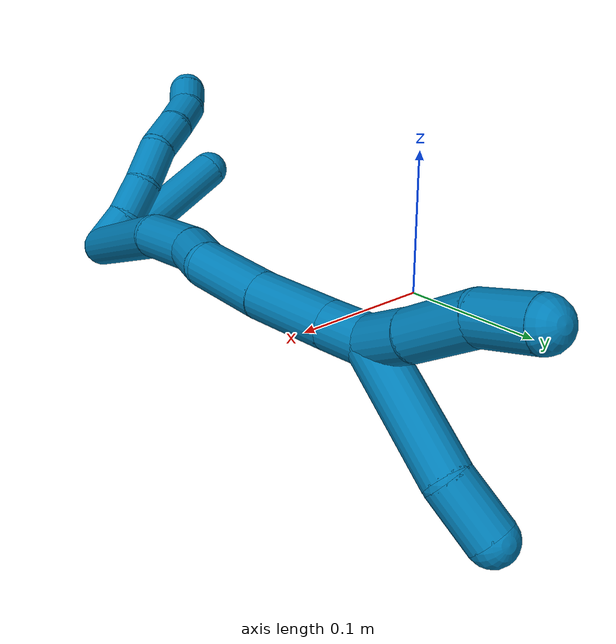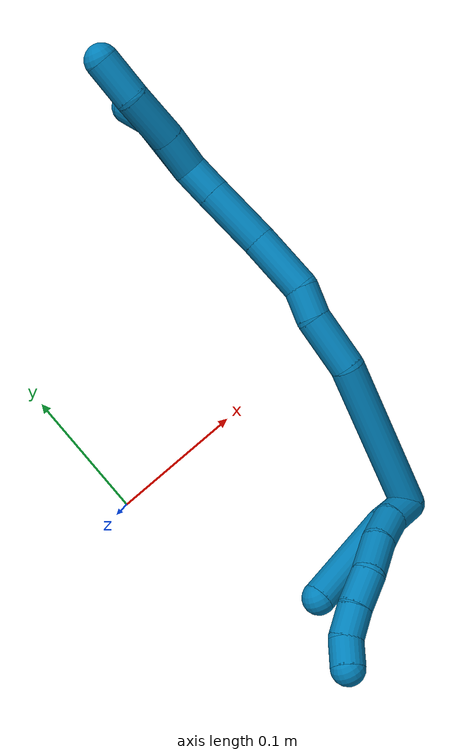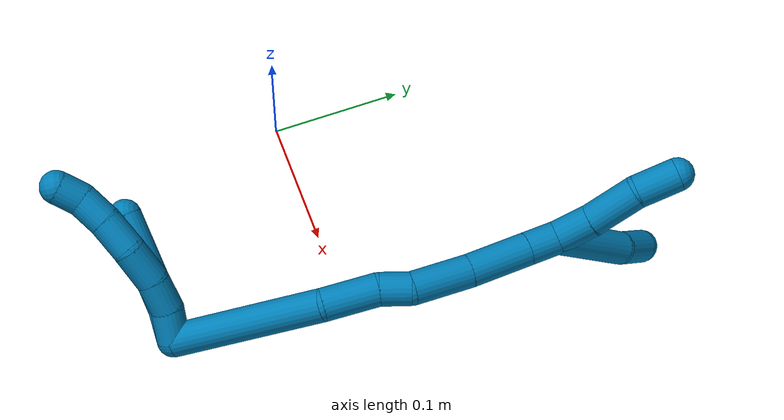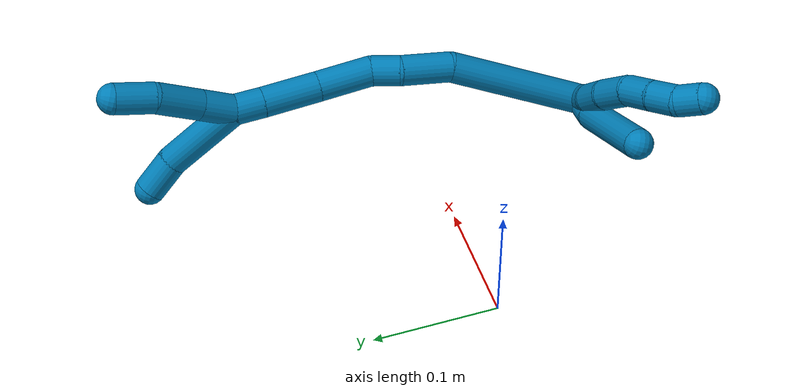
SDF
<sdf version="1.7">
 <world name="default">
  <model name="9">
   <static>0</static>
   <link name="9">
    <collision name="collision-cylinder-e_1_2_8">
     <pose>-0.007929 -0.009424 0.001888 1.3731 -0.689765 -0.572652</pose>
     <geometry><cylinder><radius>0.0125</radius><length>0.02492</length></cylinder></geometry>
     <surface>
      <friction><ode><mu>1.16</mu><mu2>1.16</mu2><slip1>0</slip1><slip2>0</slip2></ode></friction>
      <contact><ode><kp>1e+06</kp><kd>1</kd><max_vel>0</max_vel><min_depth>0.001</min_depth></ode></contact>
     </surface>
    </collision>
    <visual name="visual-cylinder-e_1_2_8">
     <pose>-0.007929 -0.009424 0.001888 1.3731 -0.689765 -0.572652</pose>
     <geometry><cylinder><radius>0.0125</radius><length>0.02492</length></cylinder></geometry>
     <material><ambient>0 0.490196 0.709804 1</ambient></material>
    </visual>
    <collision name="collision-cylinder-e_2_8_9">
     <pose>-0.022619 -0.029737 0.002994 1.64246 -0.554511 -0.593442</pose>
     <geometry><cylinder><radius>0.0125</radius><length>0.02568</length></cylinder></geometry>
     <surface>
      <friction><ode><mu>1.16</mu><mu2>1.16</mu2><slip1>0</slip1><slip2>0</slip2></ode></friction>
      <contact><ode><kp>1e+06</kp><kd>1</kd><max_vel>0</max_vel><min_depth>0.001</min_depth></ode></contact>
     </surface>
    </collision>
    <visual name="visual-cylinder-e_2_8_9">
     <pose>-0.022619 -0.029737 0.002994 1.64246 -0.554511 -0.593442</pose>
     <geometry><cylinder><radius>0.0125</radius><length>0.02568</length></cylinder></geometry>
     <material><ambient>0 0.490196 0.709804 1</ambient></material>
    </visual>
    <collision name="collision-cylinder-e_3_9_10">
     <pose>-0.036672 -0.052847 -0.001391 1.85749 -0.519838 -0.683407</pose>
     <geometry><cylinder><radius>0.0125</radius><length>0.029363</length></cylinder></geometry>
     <surface>
      <friction><ode><mu>1.16</mu><mu2>1.16</mu2><slip1>0</slip1><slip2>0</slip2></ode></friction>
      <contact><ode><kp>1e+06</kp><kd>1</kd><max_vel>0</max_vel><min_depth>0.001</min_depth></ode></contact>
     </surface>
    </collision>
    <visual name="visual-cylinder-e_3_9_10">
     <pose>-0.036672 -0.052847 -0.001391 1.85749 -0.519838 -0.683407</pose>
     <geometry><cylinder><radius>0.0125</radius><length>0.029363</length></cylinder></geometry>
     <material><ambient>0 0.490196 0.709804 1</ambient></material>
    </visual>
    <collision name="collision-cylinder-e_4_10_11">
     <pose>-0.052664 -0.073598 -0.010173 2.11649 -0.717004 -1.1749</pose>
     <geometry><cylinder><radius>0.0125</radius><length>0.026474</length></cylinder></geometry>
     <surface>
      <friction><ode><mu>1.16</mu><mu2>1.16</mu2><slip1>0</slip1><slip2>0</slip2></ode></friction>
      <contact><ode><kp>1e+06</kp><kd>1</kd><max_vel>0</max_vel><min_depth>0.001</min_depth></ode></contact>
     </surface>
    </collision>
    <visual name="visual-cylinder-e_4_10_11">
     <pose>-0.052664 -0.073598 -0.010173 2.11649 -0.717004 -1.1749</pose>
     <geometry><cylinder><radius>0.0125</radius><length>0.026474</length></cylinder></geometry>
     <material><ambient>0 0.490196 0.709804 1</ambient></material>
    </visual>
    <collision name="collision-cylinder-e_5_11_12">
     <pose>-0.068413 -0.089201 -0.021261 2.26676 -0.652983 -1.25343</pose>
     <geometry><cylinder><radius>0.0125</radius><length>0.023211</length></cylinder></geometry>
     <surface>
      <friction><ode><mu>1.16</mu><mu2>1.16</mu2><slip1>0</slip1><slip2>0</slip2></ode></friction>
      <contact><ode><kp>1e+06</kp><kd>1</kd><max_vel>0</max_vel><min_depth>0.001</min_depth></ode></contact>
     </surface>
    </collision>
    <visual name="visual-cylinder-e_5_11_12">
     <pose>-0.068413 -0.089201 -0.021261 2.26676 -0.652983 -1.25343</pose>
     <geometry><cylinder><radius>0.0125</radius><length>0.023211</length></cylinder></geometry>
     <material><ambient>0 0.490196 0.709804 1</ambient></material>
    </visual>
    <collision name="collision-cylinder-e_6_12_6">
     <pose>-0.078534 -0.103441 -0.033711 2.31048 -0.30642 -0.673273</pose>
     <geometry><cylinder><radius>0.0125</radius><length>0.020351</length></cylinder></geometry>
     <surface>
      <friction><ode><mu>1.16</mu><mu2>1.16</mu2><slip1>0</slip1><slip2>0</slip2></ode></friction>
      <contact><ode><kp>1e+06</kp><kd>1</kd><max_vel>0</max_vel><min_depth>0.001</min_depth></ode></contact>
     </surface>
    </collision>
    <visual name="visual-cylinder-e_6_12_6">
     <pose>-0.078534 -0.103441 -0.033711 2.31048 -0.30642 -0.673273</pose>
     <geometry><cylinder><radius>0.0125</radius><length>0.020351</length></cylinder></geometry>
     <material><ambient>0 0.490196 0.709804 1</ambient></material>
    </visual>
    <collision name="collision-cylinder-e_1_2_13">
     <pose>-0.011535 -0.004131 -0.001309 1.87757 -1.21142 -1.51515</pose>
     <geometry><cylinder><radius>0.0125</radius><length>0.024645</length></cylinder></geometry>
     <surface>
      <friction><ode><mu>1.16</mu><mu2>1.16</mu2><slip1>0</slip1><slip2>0</slip2></ode></friction>
      <contact><ode><kp>1e+06</kp><kd>1</kd><max_vel>0</max_vel><min_depth>0.001</min_depth></ode></contact>
     </surface>
    </collision>
    <visual name="visual-cylinder-e_1_2_13">
     <pose>-0.011535 -0.004131 -0.001309 1.87757 -1.21142 -1.51515</pose>
     <geometry><cylinder><radius>0.0125</radius><length>0.024645</length></cylinder></geometry>
     <material><ambient>0 0.490196 0.709804 1</ambient></material>
    </visual>
    <collision name="collision-cylinder-e_2_13_5">
     <pose>-0.053794 -0.029293 -0.008396 1.83894 -0.953478 -1.19096</pose>
     <geometry><cylinder><radius>0.0125</radius><length>0.075355</length></cylinder></geometry>
     <surface>
      <friction><ode><mu>1.16</mu><mu2>1.16</mu2><slip1>0</slip1><slip2>0</slip2></ode></friction>
      <contact><ode><kp>1e+06</kp><kd>1</kd><max_vel>0</max_vel><min_depth>0.001</min_depth></ode></contact>
     </surface>
    </collision>
    <visual name="visual-cylinder-e_2_13_5">
     <pose>-0.053794 -0.029293 -0.008396 1.83894 -0.953478 -1.19096</pose>
     <geometry><cylinder><radius>0.0125</radius><length>0.075355</length></cylinder></geometry>
     <material><ambient>0 0.490196 0.709804 1</ambient></material>
    </visual>
    <collision name="collision-cylinder-e_1_2_14">
     <pose>0.001609 -0.00093 0.059238 0.015694 0.027158 0.000213</pose>
     <geometry><cylinder><radius>0.0125</radius><length>0.118534</length></cylinder></geometry>
     <surface>
      <friction><ode><mu>1.16</mu><mu2>1.16</mu2><slip1>0</slip1><slip2>0</slip2></ode></friction>
      <contact><ode><kp>1e+06</kp><kd>1</kd><max_vel>0</max_vel><min_depth>0.001</min_depth></ode></contact>
     </surface>
    </collision>
    <visual name="visual-cylinder-e_1_2_14">
     <pose>0.001609 -0.00093 0.059238 0.015694 0.027158 0.000213</pose>
     <geometry><cylinder><radius>0.0125</radius><length>0.118534</length></cylinder></geometry>
     <material><ambient>0 0.490196 0.709804 1</ambient></material>
    </visual>
    <collision name="collision-cylinder-e_2_14_15">
     <pose>-0.000321 0.002779 0.138636 -0.226143 -0.169468 0.01929</pose>
     <geometry><cylinder><radius>0.0125</radius><length>0.041975</length></cylinder></geometry>
     <surface>
      <friction><ode><mu>1.16</mu><mu2>1.16</mu2><slip1>0</slip1><slip2>0</slip2></ode></friction>
      <contact><ode><kp>1e+06</kp><kd>1</kd><max_vel>0</max_vel><min_depth>0.001</min_depth></ode></contact>
     </surface>
    </collision>
    <visual name="visual-cylinder-e_2_14_15">
     <pose>-0.000321 0.002779 0.138636 -0.226143 -0.169468 0.01929</pose>
     <geometry><cylinder><radius>0.0125</radius><length>0.041975</length></cylinder></geometry>
     <material><ambient>0 0.490196 0.709804 1</ambient></material>
    </visual>
    <collision name="collision-cylinder-e_3_15_16">
     <pose>-0.003276 0.011587 0.169787 -0.362565 0.049668 -0.009106</pose>
     <geometry><cylinder><radius>0.0125</radius><length>0.023539</length></cylinder></geometry>
     <surface>
      <friction><ode><mu>1.16</mu><mu2>1.16</mu2><slip1>0</slip1><slip2>0</slip2></ode></friction>
      <contact><ode><kp>1e+06</kp><kd>1</kd><max_vel>0</max_vel><min_depth>0.001</min_depth></ode></contact>
     </surface>
    </collision>
    <visual name="visual-cylinder-e_3_15_16">
     <pose>-0.003276 0.011587 0.169787 -0.362565 0.049668 -0.009106</pose>
     <geometry><cylinder><radius>0.0125</radius><length>0.023539</length></cylinder></geometry>
     <material><ambient>0 0.490196 0.709804 1</ambient></material>
    </visual>
    <collision name="collision-cylinder-e_4_16_17">
     <pose>-0.009239 0.024151 0.200645 -0.399785 -0.294724 0.060128</pose>
     <geometry><cylinder><radius>0.0125</radius><length>0.04508</length></cylinder></geometry>
     <surface>
      <friction><ode><mu>1.16</mu><mu2>1.16</mu2><slip1>0</slip1><slip2>0</slip2></ode></friction>
      <contact><ode><kp>1e+06</kp><kd>1</kd><max_vel>0</max_vel><min_depth>0.001</min_depth></ode></contact>
     </surface>
    </collision>
    <visual name="visual-cylinder-e_4_16_17">
     <pose>-0.009239 0.024151 0.200645 -0.399785 -0.294724 0.060128</pose>
     <geometry><cylinder><radius>0.0125</radius><length>0.04508</length></cylinder></geometry>
     <material><ambient>0 0.490196 0.709804 1</ambient></material>
    </visual>
    <collision name="collision-cylinder-e_5_17_18">
     <pose>-0.02344 0.039901 0.241307 -0.339988 -0.333964 0.057848</pose>
     <geometry><cylinder><radius>0.0125</radius><length>0.046695</length></cylinder></geometry>
     <surface>
      <friction><ode><mu>1.16</mu><mu2>1.16</mu2><slip1>0</slip1><slip2>0</slip2></ode></friction>
      <contact><ode><kp>1e+06</kp><kd>1</kd><max_vel>0</max_vel><min_depth>0.001</min_depth></ode></contact>
     </surface>
    </collision>
    <visual name="visual-cylinder-e_5_17_18">
     <pose>-0.02344 0.039901 0.241307 -0.339988 -0.333964 0.057848</pose>
     <geometry><cylinder><radius>0.0125</radius><length>0.046695</length></cylinder></geometry>
     <material><ambient>0 0.490196 0.709804 1</ambient></material>
    </visual>
    <collision name="collision-cylinder-e_6_18_1">
     <pose>-0.034914 0.050811 0.273006 -0.31514 -0.321581 0.051529</pose>
     <geometry><cylinder><radius>0.0125</radius><length>0.024177</length></cylinder></geometry>
     <surface>
      <friction><ode><mu>1.16</mu><mu2>1.16</mu2><slip1>0</slip1><slip2>0</slip2></ode></friction>
      <contact><ode><kp>1e+06</kp><kd>1</kd><max_vel>0</max_vel><min_depth>0.001</min_depth></ode></contact>
     </surface>
    </collision>
    <visual name="visual-cylinder-e_6_18_1">
     <pose>-0.034914 0.050811 0.273006 -0.31514 -0.321581 0.051529</pose>
     <geometry><cylinder><radius>0.0125</radius><length>0.024177</length></cylinder></geometry>
     <material><ambient>0 0.490196 0.709804 1</ambient></material>
    </visual>
    <collision name="collision-cylinder-e_1_1_19">
     <pose>-0.041081 0.052538 0.297941 0.129547 -0.164382 -0.010687</pose>
     <geometry><cylinder><radius>0.0125</radius><length>0.028685</length></cylinder></geometry>
     <surface>
      <friction><ode><mu>1.16</mu><mu2>1.16</mu2><slip1>0</slip1><slip2>0</slip2></ode></friction>
      <contact><ode><kp>1e+06</kp><kd>1</kd><max_vel>0</max_vel><min_depth>0.001</min_depth></ode></contact>
     </surface>
    </collision>
    <visual name="visual-cylinder-e_1_1_19">
     <pose>-0.041081 0.052538 0.297941 0.129547 -0.164382 -0.010687</pose>
     <geometry><cylinder><radius>0.0125</radius><length>0.028685</length></cylinder></geometry>
     <material><ambient>0 0.490196 0.709804 1</ambient></material>
    </visual>
    <collision name="collision-cylinder-e_2_19_20">
     <pose>-0.047945 0.046802 0.330573 0.207075 -0.233302 -0.024352</pose>
     <geometry><cylinder><radius>0.0125</radius><length>0.039073</length></cylinder></geometry>
     <surface>
      <friction><ode><mu>1.16</mu><mu2>1.16</mu2><slip1>0</slip1><slip2>0</slip2></ode></friction>
      <contact><ode><kp>1e+06</kp><kd>1</kd><max_vel>0</max_vel><min_depth>0.001</min_depth></ode></contact>
     </surface>
    </collision>
    <visual name="visual-cylinder-e_2_19_20">
     <pose>-0.047945 0.046802 0.330573 0.207075 -0.233302 -0.024352</pose>
     <geometry><cylinder><radius>0.0125</radius><length>0.039073</length></cylinder></geometry>
     <material><ambient>0 0.490196 0.709804 1</ambient></material>
    </visual>
    <collision name="collision-cylinder-e_3_20_4">
     <pose>-0.056125 0.044062 0.36483 -0.07442 -0.229235 0.008571</pose>
     <geometry><cylinder><radius>0.0125</radius><length>0.032241</length></cylinder></geometry>
     <surface>
      <friction><ode><mu>1.16</mu><mu2>1.16</mu2><slip1>0</slip1><slip2>0</slip2></ode></friction>
      <contact><ode><kp>1e+06</kp><kd>1</kd><max_vel>0</max_vel><min_depth>0.001</min_depth></ode></contact>
     </surface>
    </collision>
    <visual name="visual-cylinder-e_3_20_4">
     <pose>-0.056125 0.044062 0.36483 -0.07442 -0.229235 0.008571</pose>
     <geometry><cylinder><radius>0.0125</radius><length>0.032241</length></cylinder></geometry>
     <material><ambient>0 0.490196 0.709804 1</ambient></material>
    </visual>
    <collision name="collision-cylinder-e_1_1_21">
     <pose>-0.045828 0.083689 0.301074 -1.04123 -0.205822 0.118295</pose>
     <geometry><cylinder><radius>0.0125</radius><length>0.069419</length></cylinder></geometry>
     <surface>
      <friction><ode><mu>1.16</mu><mu2>1.16</mu2><slip1>0</slip1><slip2>0</slip2></ode></friction>
      <contact><ode><kp>1e+06</kp><kd>1</kd><max_vel>0</max_vel><min_depth>0.001</min_depth></ode></contact>
     </surface>
    </collision>
    <visual name="visual-cylinder-e_1_1_21">
     <pose>-0.045828 0.083689 0.301074 -1.04123 -0.205822 0.118295</pose>
     <geometry><cylinder><radius>0.0125</radius><length>0.069419</length></cylinder></geometry>
     <material><ambient>0 0.490196 0.709804 1</ambient></material>
    </visual>
    <collision name="collision-cylinder-e_2_21_3">
     <pose>-0.059293 0.12566 0.324003 -1.14309 -0.42977 0.278918</pose>
     <geometry><cylinder><radius>0.0125</radius><length>0.030581</length></cylinder></geometry>
     <surface>
      <friction><ode><mu>1.16</mu><mu2>1.16</mu2><slip1>0</slip1><slip2>0</slip2></ode></friction>
      <contact><ode><kp>1e+06</kp><kd>1</kd><max_vel>0</max_vel><min_depth>0.001</min_depth></ode></contact>
     </surface>
    </collision>
    <visual name="visual-cylinder-e_2_21_3">
     <pose>-0.059293 0.12566 0.324003 -1.14309 -0.42977 0.278918</pose>
     <geometry><cylinder><radius>0.0125</radius><length>0.030581</length></cylinder></geometry>
     <material><ambient>0 0.490196 0.709804 1</ambient></material>
    </visual>
    <collision name="collision-sphere-3">
     <pose>-0.065663 0.138308 0.329768 0 -0 0</pose>
     <geometry><sphere><radius>0.0125</radius></sphere></geometry>
     <surface>
      <friction><ode><mu>1.16</mu><mu2>1.16</mu2><slip1>0</slip1><slip2>0</slip2></ode></friction>
      <contact><ode><kp>1e+06</kp><kd>1</kd><max_vel>0</max_vel><min_depth>0.001</min_depth></ode></contact>
     </surface>
    </collision>
    <visual name="visual-sphere-3">
     <pose>-0.065663 0.138308 0.329768 0 -0 0</pose>
     <geometry><sphere><radius>0.0125</radius></sphere></geometry>
     <material><ambient>0 0.490196 0.709804 1</ambient></material>
    </visual>
    <collision name="collision-sphere-21">
     <pose>-0.052922 0.113012 0.318237 0 -0 0</pose>
     <geometry><sphere><radius>0.0125</radius></sphere></geometry>
     <surface>
      <friction><ode><mu>1.16</mu><mu2>1.16</mu2><slip1>0</slip1><slip2>0</slip2></ode></friction>
      <contact><ode><kp>1e+06</kp><kd>1</kd><max_vel>0</max_vel><min_depth>0.001</min_depth></ode></contact>
     </surface>
    </collision>
    <visual name="visual-sphere-21">
     <pose>-0.052922 0.113012 0.318237 0 -0 0</pose>
     <geometry><sphere><radius>0.0125</radius></sphere></geometry>
     <material><ambient>0 0.490196 0.709804 1</ambient></material>
    </visual>
    <collision name="collision-sphere-4">
     <pose>-0.059788 0.045229 0.380485 0 -0 0</pose>
     <geometry><sphere><radius>0.0125</radius></sphere></geometry>
     <surface>
      <friction><ode><mu>1.16</mu><mu2>1.16</mu2><slip1>0</slip1><slip2>0</slip2></ode></friction>
      <contact><ode><kp>1e+06</kp><kd>1</kd><max_vel>0</max_vel><min_depth>0.001</min_depth></ode></contact>
     </surface>
    </collision>
    <visual name="visual-sphere-4">
     <pose>-0.059788 0.045229 0.380485 0 -0 0</pose>
     <geometry><sphere><radius>0.0125</radius></sphere></geometry>
     <material><ambient>0 0.490196 0.709804 1</ambient></material>
    </visual>
    <collision name="collision-sphere-20">
     <pose>-0.052462 0.042894 0.349175 0 -0 0</pose>
     <geometry><sphere><radius>0.0125</radius></sphere></geometry>
     <surface>
      <friction><ode><mu>1.16</mu><mu2>1.16</mu2><slip1>0</slip1><slip2>0</slip2></ode></friction>
      <contact><ode><kp>1e+06</kp><kd>1</kd><max_vel>0</max_vel><min_depth>0.001</min_depth></ode></contact>
     </surface>
    </collision>
    <visual name="visual-sphere-20">
     <pose>-0.052462 0.042894 0.349175 0 -0 0</pose>
     <geometry><sphere><radius>0.0125</radius></sphere></geometry>
     <material><ambient>0 0.490196 0.709804 1</ambient></material>
    </visual>
    <collision name="collision-sphere-12">
     <pose>-0.075464 -0.096275 -0.027171 0 -0 0</pose>
     <geometry><sphere><radius>0.0125</radius></sphere></geometry>
     <surface>
      <friction><ode><mu>1.16</mu><mu2>1.16</mu2><slip1>0</slip1><slip2>0</slip2></ode></friction>
      <contact><ode><kp>1e+06</kp><kd>1</kd><max_vel>0</max_vel><min_depth>0.001</min_depth></ode></contact>
     </surface>
    </collision>
    <visual name="visual-sphere-12">
     <pose>-0.075464 -0.096275 -0.027171 0 -0 0</pose>
     <geometry><sphere><radius>0.0125</radius></sphere></geometry>
     <material><ambient>0 0.490196 0.709804 1</ambient></material>
    </visual>
    <collision name="collision-sphere-11">
     <pose>-0.061362 -0.082126 -0.015351 0 -0 0</pose>
     <geometry><sphere><radius>0.0125</radius></sphere></geometry>
     <surface>
      <friction><ode><mu>1.16</mu><mu2>1.16</mu2><slip1>0</slip1><slip2>0</slip2></ode></friction>
      <contact><ode><kp>1e+06</kp><kd>1</kd><max_vel>0</max_vel><min_depth>0.001</min_depth></ode></contact>
     </surface>
    </collision>
    <visual name="visual-sphere-11">
     <pose>-0.061362 -0.082126 -0.015351 0 -0 0</pose>
     <geometry><sphere><radius>0.0125</radius></sphere></geometry>
     <material><ambient>0 0.490196 0.709804 1</ambient></material>
    </visual>
    <collision name="collision-sphere-10">
     <pose>-0.043965 -0.065069 -0.004994 0 -0 0</pose>
     <geometry><sphere><radius>0.0125</radius></sphere></geometry>
     <surface>
      <friction><ode><mu>1.16</mu><mu2>1.16</mu2><slip1>0</slip1><slip2>0</slip2></ode></friction>
      <contact><ode><kp>1e+06</kp><kd>1</kd><max_vel>0</max_vel><min_depth>0.001</min_depth></ode></contact>
     </surface>
    </collision>
    <visual name="visual-sphere-10">
     <pose>-0.043965 -0.065069 -0.004994 0 -0 0</pose>
     <geometry><sphere><radius>0.0125</radius></sphere></geometry>
     <material><ambient>0 0.490196 0.709804 1</ambient></material>
    </visual>
    <collision name="collision-sphere-9">
     <pose>-0.029379 -0.040625 0.002212 0 -0 0</pose>
     <geometry><sphere><radius>0.0125</radius></sphere></geometry>
     <surface>
      <friction><ode><mu>1.16</mu><mu2>1.16</mu2><slip1>0</slip1><slip2>0</slip2></ode></friction>
      <contact><ode><kp>1e+06</kp><kd>1</kd><max_vel>0</max_vel><min_depth>0.001</min_depth></ode></contact>
     </surface>
    </collision>
    <visual name="visual-sphere-9">
     <pose>-0.029379 -0.040625 0.002212 0 -0 0</pose>
     <geometry><sphere><radius>0.0125</radius></sphere></geometry>
     <material><ambient>0 0.490196 0.709804 1</ambient></material>
    </visual>
    <collision name="collision-sphere-2">
     <geometry><sphere><radius>0.0125</radius></sphere></geometry>
     <surface>
      <friction><ode><mu>1.16</mu><mu2>1.16</mu2><slip1>0</slip1><slip2>0</slip2></ode></friction>
      <contact><ode><kp>1e+06</kp><kd>1</kd><max_vel>0</max_vel><min_depth>0.001</min_depth></ode></contact>
     </surface>
    </collision>
    <visual name="visual-sphere-2">
     <geometry><sphere><radius>0.0125</radius></sphere></geometry>
     <material><ambient>0 0.490196 0.709804 1</ambient></material>
    </visual>
    <collision name="collision-sphere-19">
     <pose>-0.043428 0.05071 0.311972 0 -0 0</pose>
     <geometry><sphere><radius>0.0125</radius></sphere></geometry>
     <surface>
      <friction><ode><mu>1.16</mu><mu2>1.16</mu2><slip1>0</slip1><slip2>0</slip2></ode></friction>
      <contact><ode><kp>1e+06</kp><kd>1</kd><max_vel>0</max_vel><min_depth>0.001</min_depth></ode></contact>
     </surface>
    </collision>
    <visual name="visual-sphere-19">
     <pose>-0.043428 0.05071 0.311972 0 -0 0</pose>
     <geometry><sphere><radius>0.0125</radius></sphere></geometry>
     <material><ambient>0 0.490196 0.709804 1</ambient></material>
    </visual>
    <collision name="collision-sphere-8">
     <pose>-0.015858 -0.018849 0.003776 0 -0 0</pose>
     <geometry><sphere><radius>0.0125</radius></sphere></geometry>
     <surface>
      <friction><ode><mu>1.16</mu><mu2>1.16</mu2><slip1>0</slip1><slip2>0</slip2></ode></friction>
      <contact><ode><kp>1e+06</kp><kd>1</kd><max_vel>0</max_vel><min_depth>0.001</min_depth></ode></contact>
     </surface>
    </collision>
    <visual name="visual-sphere-8">
     <pose>-0.015858 -0.018849 0.003776 0 -0 0</pose>
     <geometry><sphere><radius>0.0125</radius></sphere></geometry>
     <material><ambient>0 0.490196 0.709804 1</ambient></material>
    </visual>
    <collision name="collision-sphere-6">
     <pose>-0.081603 -0.110608 -0.04025 0 -0 0</pose>
     <geometry><sphere><radius>0.0125</radius></sphere></geometry>
     <surface>
      <friction><ode><mu>1.16</mu><mu2>1.16</mu2><slip1>0</slip1><slip2>0</slip2></ode></friction>
      <contact><ode><kp>1e+06</kp><kd>1</kd><max_vel>0</max_vel><min_depth>0.001</min_depth></ode></contact>
     </surface>
    </collision>
    <visual name="visual-sphere-6">
     <pose>-0.081603 -0.110608 -0.04025 0 -0 0</pose>
     <geometry><sphere><radius>0.0125</radius></sphere></geometry>
     <material><ambient>0 0.490196 0.709804 1</ambient></material>
    </visual>
    <collision name="collision-sphere-13">
     <pose>-0.023071 -0.008263 -0.002617 0 -0 0</pose>
     <geometry><sphere><radius>0.0125</radius></sphere></geometry>
     <surface>
      <friction><ode><mu>1.16</mu><mu2>1.16</mu2><slip1>0</slip1><slip2>0</slip2></ode></friction>
      <contact><ode><kp>1e+06</kp><kd>1</kd><max_vel>0</max_vel><min_depth>0.001</min_depth></ode></contact>
     </surface>
    </collision>
    <visual name="visual-sphere-13">
     <pose>-0.023071 -0.008263 -0.002617 0 -0 0</pose>
     <geometry><sphere><radius>0.0125</radius></sphere></geometry>
     <material><ambient>0 0.490196 0.709804 1</ambient></material>
    </visual>
    <collision name="collision-sphere-5">
     <pose>-0.084518 -0.050323 -0.014174 0 -0 0</pose>
     <geometry><sphere><radius>0.0125</radius></sphere></geometry>
     <surface>
      <friction><ode><mu>1.16</mu><mu2>1.16</mu2><slip1>0</slip1><slip2>0</slip2></ode></friction>
      <contact><ode><kp>1e+06</kp><kd>1</kd><max_vel>0</max_vel><min_depth>0.001</min_depth></ode></contact>
     </surface>
    </collision>
    <visual name="visual-sphere-5">
     <pose>-0.084518 -0.050323 -0.014174 0 -0 0</pose>
     <geometry><sphere><radius>0.0125</radius></sphere></geometry>
     <material><ambient>0 0.490196 0.709804 1</ambient></material>
    </visual>
    <collision name="collision-sphere-14">
     <pose>0.003219 -0.00186 0.118476 0 -0 0</pose>
     <geometry><sphere><radius>0.0125</radius></sphere></geometry>
     <surface>
      <friction><ode><mu>1.16</mu><mu2>1.16</mu2><slip1>0</slip1><slip2>0</slip2></ode></friction>
      <contact><ode><kp>1e+06</kp><kd>1</kd><max_vel>0</max_vel><min_depth>0.001</min_depth></ode></contact>
     </surface>
    </collision>
    <visual name="visual-sphere-14">
     <pose>0.003219 -0.00186 0.118476 0 -0 0</pose>
     <geometry><sphere><radius>0.0125</radius></sphere></geometry>
     <material><ambient>0 0.490196 0.709804 1</ambient></material>
    </visual>
    <collision name="collision-sphere-15">
     <pose>-0.003861 0.007417 0.158796 0 -0 0</pose>
     <geometry><sphere><radius>0.0125</radius></sphere></geometry>
     <surface>
      <friction><ode><mu>1.16</mu><mu2>1.16</mu2><slip1>0</slip1><slip2>0</slip2></ode></friction>
      <contact><ode><kp>1e+06</kp><kd>1</kd><max_vel>0</max_vel><min_depth>0.001</min_depth></ode></contact>
     </surface>
    </collision>
    <visual name="visual-sphere-15">
     <pose>-0.003861 0.007417 0.158796 0 -0 0</pose>
     <geometry><sphere><radius>0.0125</radius></sphere></geometry>
     <material><ambient>0 0.490196 0.709804 1</ambient></material>
    </visual>
    <collision name="collision-sphere-16">
     <pose>-0.002692 0.015756 0.180778 0 -0 0</pose>
     <geometry><sphere><radius>0.0125</radius></sphere></geometry>
     <surface>
      <friction><ode><mu>1.16</mu><mu2>1.16</mu2><slip1>0</slip1><slip2>0</slip2></ode></friction>
      <contact><ode><kp>1e+06</kp><kd>1</kd><max_vel>0</max_vel><min_depth>0.001</min_depth></ode></contact>
     </surface>
    </collision>
    <visual name="visual-sphere-16">
     <pose>-0.002692 0.015756 0.180778 0 -0 0</pose>
     <geometry><sphere><radius>0.0125</radius></sphere></geometry>
     <material><ambient>0 0.490196 0.709804 1</ambient></material>
    </visual>
    <collision name="collision-sphere-17">
     <pose>-0.015787 0.032545 0.220513 0 -0 0</pose>
     <geometry><sphere><radius>0.0125</radius></sphere></geometry>
     <surface>
      <friction><ode><mu>1.16</mu><mu2>1.16</mu2><slip1>0</slip1><slip2>0</slip2></ode></friction>
      <contact><ode><kp>1e+06</kp><kd>1</kd><max_vel>0</max_vel><min_depth>0.001</min_depth></ode></contact>
     </surface>
    </collision>
    <visual name="visual-sphere-17">
     <pose>-0.015787 0.032545 0.220513 0 -0 0</pose>
     <geometry><sphere><radius>0.0125</radius></sphere></geometry>
     <material><ambient>0 0.490196 0.709804 1</ambient></material>
    </visual>
    <collision name="collision-sphere-18">
     <pose>-0.031093 0.047257 0.262102 0 -0 0</pose>
     <geometry><sphere><radius>0.0125</radius></sphere></geometry>
     <surface>
      <friction><ode><mu>1.16</mu><mu2>1.16</mu2><slip1>0</slip1><slip2>0</slip2></ode></friction>
      <contact><ode><kp>1e+06</kp><kd>1</kd><max_vel>0</max_vel><min_depth>0.001</min_depth></ode></contact>
     </surface>
    </collision>
    <visual name="visual-sphere-18">
     <pose>-0.031093 0.047257 0.262102 0 -0 0</pose>
     <geometry><sphere><radius>0.0125</radius></sphere></geometry>
     <material><ambient>0 0.490196 0.709804 1</ambient></material>
    </visual>
    <collision name="collision-sphere-1">
     <pose>-0.038734 0.054366 0.28391 0 -0 0</pose>
     <geometry><sphere><radius>0.0125</radius></sphere></geometry>
     <surface>
      <friction><ode><mu>1.16</mu><mu2>1.16</mu2><slip1>0</slip1><slip2>0</slip2></ode></friction>
      <contact><ode><kp>1e+06</kp><kd>1</kd><max_vel>0</max_vel><min_depth>0.001</min_depth></ode></contact>
     </surface>
    </collision>
    <visual name="visual-sphere-1">
     <pose>-0.038734 0.054366 0.28391 0 -0 0</pose>
     <geometry><sphere><radius>0.0125</radius></sphere></geometry>
     <material><ambient>0 0.490196 0.709804 1</ambient></material>
    </visual>
    <inertial>
     <pose>-0.030513 0.010513 0.141006 0 -0 0</pose>
     <mass>0.75</mass>
     <inertia>
      <ixx>0.000192</ixx>
      <ixy>0</ixy>
      <ixz>0</ixz>
      <iyy>0.000207</iyy>
      <iyz>0</iyz>
      <izz>8.3e-05</izz>
     </inertia>
    </inertial>
   </link>
   <pose>0.161165 -0.133475 0.036073 -1.22464 -0.098556 -0.272825</pose>
  </model>
 </world>
</sdf>
